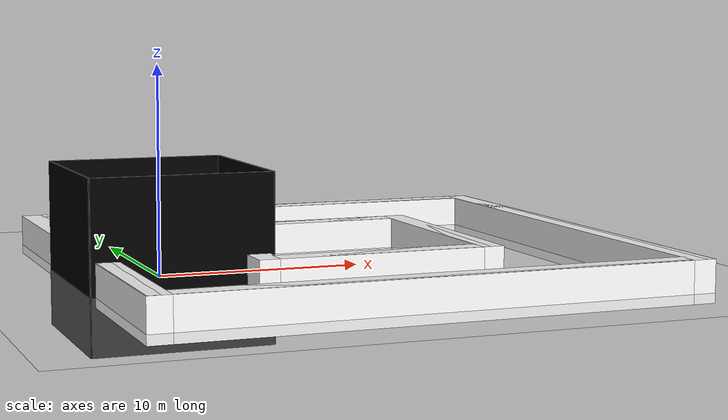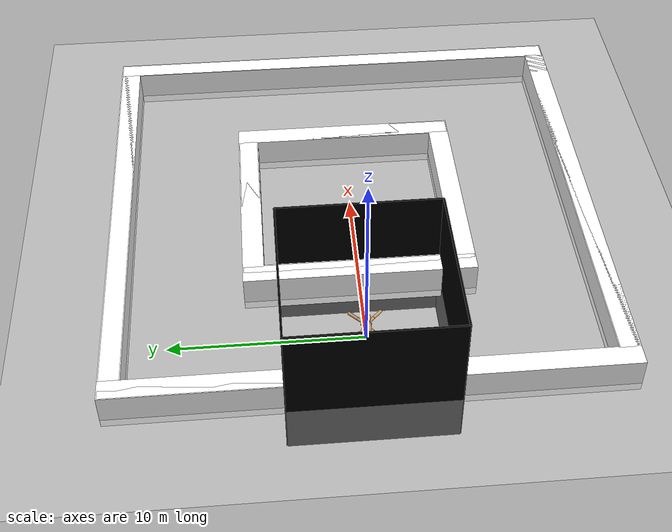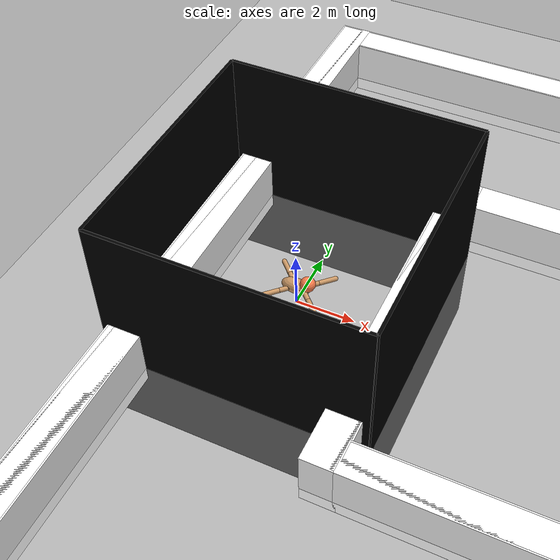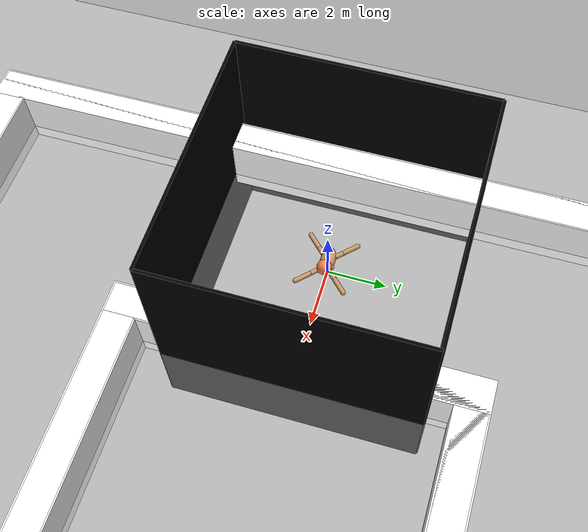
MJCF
<mujoco model="ant">
  <compiler angle="degree" coordinate="local" inertiafromgeom="true" settotalmass="40" eulerseq="XYZ"/>
  <option integrator="RK4" timestep="0.005"/>
  <custom>
    <numeric data="0.0 0.0 0.55 1.0 0.0 0.0 0.0 0.0 1.0 0.0 -1.0 0.0 -1.0 0.0 1.0" name="init_qpos"/>
  </custom>
  <default>
    <joint armature="1" damping="1" limited="true"/>
    <geom conaffinity="1" contype="1" condim="3" density="5.0" friction="1 0.5 0.5" margin="0.01" rgba="0.8 0.6 0.4 1" material="geom"/>
  </default>
    <asset>
        <texture type="skybox" builtin="gradient" rgb1=".1 .12 .15" rgb2="0 0 0" width="100" height="100"/>
        <texture builtin="checker" height="100" name="texplane" rgb1=".35 .65 .65" rgb2=".0 .4 0.6" type="2d" width="100"/>
        <material name="MatPlane" reflectance="0.25" shininess="1" specular="1" texrepeat="25 25" texture="texplane"/>
        <texture builtin="flat" height="1278" mark="cross" markrgb="1 1 1" name="texgeom" random="0.01" rgb1="0.8 0.6 0.4" rgb2="0.8 0.6 0.4" type="cube" width="127"/>
        <material name="geom" texture="texgeom" texuniform="true"/>
    </asset>
  <worldbody>
    <light directional="true" cutoff="100" exponent="1" diffuse="1 1 1" specular=".1 .1 .1" pos="0 0 1.3" dir="-0 0 -1.3" />
    <geom name='floor' material="MatPlane" pos='0 0 0' size='40 40 40' type='plane' rgba='0.9 0.9 0.9 1' condim='3' group="1"/>

    <geom name="wall-0" pos="-3.5   0.0  0.5" rgba="1. 1. 1. 1" size=" 0.5 13.0 1.0" type="box" material="" group="1" />
    <geom name="wall-1" pos=" 3.5   0.0  0.5" rgba="1. 1. 1. 1" size=" 0.5  6.0 1.0" type="box" material="" group="1" />
    <geom name="wall-2" pos="14.5   0.0  0.5" rgba="1. 1. 1. 1" size=" 0.5  6.0 1.0" type="box" material="" group="1" />
    <geom name="wall-3" pos="21.5   0.0  0.5" rgba="1. 1. 1. 1" size=" 0.5 13.0 1.0" type="box" material="" group="1" />
    <geom name="wall-4" pos=" 9.0  12.5  0.5" rgba="1. 1. 1. 1" size="12.0  0.5 1.0" type="box" material="" group="1" />
    <geom name="wall-5" pos=" 9.0   5.5  0.5" rgba="1. 1. 1. 1" size=" 5.0  0.5 1.0" type="box" material="" group="1" />
    <geom name="wall-6" pos=" 9.0  -5.5  0.5" rgba="1. 1. 1. 1" size=" 5.0  0.5 1.0" type="box" material="" group="1" />
    <geom name="wall-7" pos=" 9.0 -12.5  0.5" rgba="1. 1. 1. 1" size="12.0  0.5 1.0" type="box" material="" group="1" />

    <site name="s-wall-0" pos="-3.5   0.0  0.5" rgba="1. 1. 1. 1" size=" 0.55 13.05 1.0" type="box" material="" group="1" />
    <site name="s-wall-1" pos=" 3.5   0.0  0.5" rgba="1. 1. 1. 1" size=" 0.55  6.05 1.0" type="box" material="" group="1" />
    <site name="s-wall-2" pos="14.5   0.0  0.5" rgba="1. 1. 1. 1" size=" 0.55  6.05 1.0" type="box" material="" group="1" />
    <site name="s-wall-3" pos="21.5   0.0  0.5" rgba="1. 1. 1. 1" size=" 0.55 13.05 1.0" type="box" material="" group="1" />
    <site name="s-wall-4" pos=" 9.0  12.5  0.5" rgba="1. 1. 1. 1" size="12.05  0.55 1.0" type="box" material="" group="1" />
    <site name="s-wall-5" pos=" 9.0   5.5  0.5" rgba="1. 1. 1. 1" size=" 5.05  0.55 1.0" type="box" material="" group="1" />
    <site name="s-wall-6" pos=" 9.0  -5.5  0.5" rgba="1. 1. 1. 1" size=" 5.05  0.55 1.0" type="box" material="" group="1" />
    <site name="s-wall-7" pos=" 9.0 -12.5  0.5" rgba="1. 1. 1. 1" size="12.05  0.55 1.0" type="box" material="" group="1" />

    <camera name="global_camera" mode="fixed" pos="9.0 0 35.0" xyaxes="1 0 0 0 1 0"/>
    <camera name="global_camera_2" mode="fixed" pos="-6.5 -15.5 25.0" euler="40 0 -45"/>

    <body name="torso" pos="0 0 0.75">
      <geom name="torso_geom" pos="0 0 0" size="0.50 0.25 0.25" type="ellipsoid"/>
      <body name="head" pos="0.4 0 0.25">
        <camera name="front_camera" mode="fixed" pos="-0.1 0 0" euler="90 0 -90"/>
        <geom name="head_geom" density="0.01" rgba="1.0 0.5 0.3 1" pos="0.0 0.0 0.0" size="0.25" type="sphere"/>
        <site name="head_site" pos="0.0 0.0 0.0" size="0.005" type="sphere"/>
      </body>
      <body name="limit" pos = "0 0 0">
        <site name="lim0" pos=" 4.26  0.0 0.5" rgba="0.0 0.0 0.0 1" size="0.05 4.26 4.0" type="box" material="" group="1"/>
        <site name="lim1" pos="-4.26  0.0 0.5" rgba="0.0 0.0 0.0 1" size="0.05 4.26 4.0" type="box" material="" group="1"/>
        <site name="lim2" pos=" 0.0  4.26 0.5" rgba="0.0 0.0 0.0 1" size="4.26 0.05 4.0" type="box" material="" group="1"/>
        <site name="lim3" pos=" 0.0 -4.26 0.5" rgba="0.0 0.0 0.0 1" size="4.26 0.05 4.0" type="box" material="" group="1"/>
      </body>
      <joint armature="0" damping="0" limited="false" margin="0.01" name="root" pos="0 0 0" type="free"/>
      <body name="front_left_leg" pos="0 0 0">
        <geom fromto="0.0 0.0 0.0 0.2 0.2 0.0" name="aux_1_geom" size="0.08" type="capsule"/>
        <body name="aux_1" pos="0.4 0.2 0">
          <joint axis="0 0 1" name="hip_1" pos="0.0 0.0 0.0" range="-30 30" type="hinge"/>
          <geom fromto="0.0 0.0 0.0 0.2 0.2 0.0" name="front_left_leg_geom" size="0.08" type="capsule"/>
          <site fromto="0.0 0.0 0.0 0.2 0.2 0.0" name="front_left_leg_site" size="0.005" type="capsule"/>
          <body pos="0.2 0.2 0">
            <joint axis="-1 1 0" name="ankle_1" pos="0.0 0.0 0.0" range="30 70" type="hinge"/>
            <geom fromto="0.0 0.0 0.0 0.4 0.4 0.0" name="front_left_ankle_geom" size="0.08" type="capsule"/>
            <site fromto="0.0 0.0 0.0 0.4 0.4 0.0" name="front_left_ankle_site" size="0.005" type="capsule"/>
          </body>
        </body>
      </body>
      <body name="front_right_leg" pos="0 0 0">
        <geom fromto="0.0 0.0 0.0 -0.2 0.2 0.0" name="aux_2_geom" size="0.08" type="capsule"/>
        <body name="aux_2" pos="-0.2 0.2 0">
          <joint axis="0 0 1" name="hip_2" pos="0.0 0.0 0.0" range="-30 30" type="hinge"/>
          <geom fromto="0.0 0.0 0.0 -0.2 0.2 0.0" name="front_right_leg_geom" size="0.08" type="capsule"/>
          <body pos="-0.2 0.2 0">
            <joint axis="1 1 0" name="ankle_2" pos="0.0 0.0 0.0" range="-70 -30" type="hinge"/>
            <geom fromto="0.0 0.0 0.0 -0.4 0.4 0.0" name="front_right_ankle_geom" size="0.08" type="capsule"/>
          </body>
        </body>
      </body>
      <body name="back_leg" pos="0 0 0">
        <geom fromto="0.0 0.0 0.0 -0.2 -0.2 0.0" name="aux_3_geom" size="0.08" type="capsule"/>
        <body name="aux_3" pos="-0.2 -0.2 0">
          <joint axis="0 0 1" name="hip_3" pos="0.0 0.0 0.0" range="-30 30" type="hinge"/>
          <geom fromto="0.0 0.0 0.0 -0.2 -0.2 0.0" name="left_back_leg_geom" size="0.08" type="capsule"/>
          <body pos="-0.2 -0.2 0">
            <joint axis="-1 1 0" name="ankle_3" pos="0.0 0.0 0.0" range="-70 -30" type="hinge"/>
            <geom fromto="0.0 0.0 0.0 -0.4 -0.4 0.0" name="left_back_ankle_geom" size="0.08" type="capsule"/>
          </body>
        </body>
      </body>
      <body name="right_back_leg" pos="0 0 0">
        <geom fromto="0.0 0.0 0.0 0.2 -0.2 0.0" name="aux_4_geom" size="0.08" type="capsule"/>
        <body name="aux_4" pos="0.4 -0.2 0">
          <joint axis="0 0 1" name="hip_4" pos="0.0 0.0 0.0" range="-30 30" type="hinge"/>
          <geom fromto="0.0 0.0 0.0 0.2 -0.2 0.0" name="right_back_leg_geom" size="0.08" type="capsule"/>
          <body pos="0.2 -0.2 0">
            <joint axis="1 1 0" name="ankle_4" pos="0.0 0.0 0.0" range="30 70" type="hinge"/>
            <geom fromto="0.0 0.0 0.0 0.4 -0.4 0.0" name="right_back_ankle_geom" size="0.08" type="capsule"/>
          </body>
        </body>
      </body>
    </body>

  </worldbody>
  <actuator>
    <motor ctrllimited="true" ctrlrange="-1.0 1.0" joint="hip_4" gear="150"/>
    <motor ctrllimited="true" ctrlrange="-1.0 1.0" joint="ankle_4" gear="150"/>
    <motor ctrllimited="true" ctrlrange="-1.0 1.0" joint="hip_1" gear="150"/>
    <motor ctrllimited="true" ctrlrange="-1.0 1.0" joint="ankle_1" gear="150"/>
    <motor ctrllimited="true" ctrlrange="-1.0 1.0" joint="hip_2" gear="150"/>
    <motor ctrllimited="true" ctrlrange="-1.0 1.0" joint="ankle_2" gear="150"/>
    <motor ctrllimited="true" ctrlrange="-1.0 1.0" joint="hip_3" gear="150"/>
    <motor ctrllimited="true" ctrlrange="-1.0 1.0" joint="ankle_3" gear="150"/>
  </actuator>
  <sensor>
    <touch site="s-wall-0" cutoff="200"/>
    <touch site="s-wall-1" cutoff="200"/>
    <touch site="s-wall-2" cutoff="200"/>
    <touch site="s-wall-3" cutoff="200"/>
    <touch site="s-wall-4" cutoff="200"/>
    <touch site="s-wall-5" cutoff="200"/>
    <touch site="s-wall-6" cutoff="200"/>
    <touch site="s-wall-7" cutoff="200"/>
  </sensor>
</mujoco>
